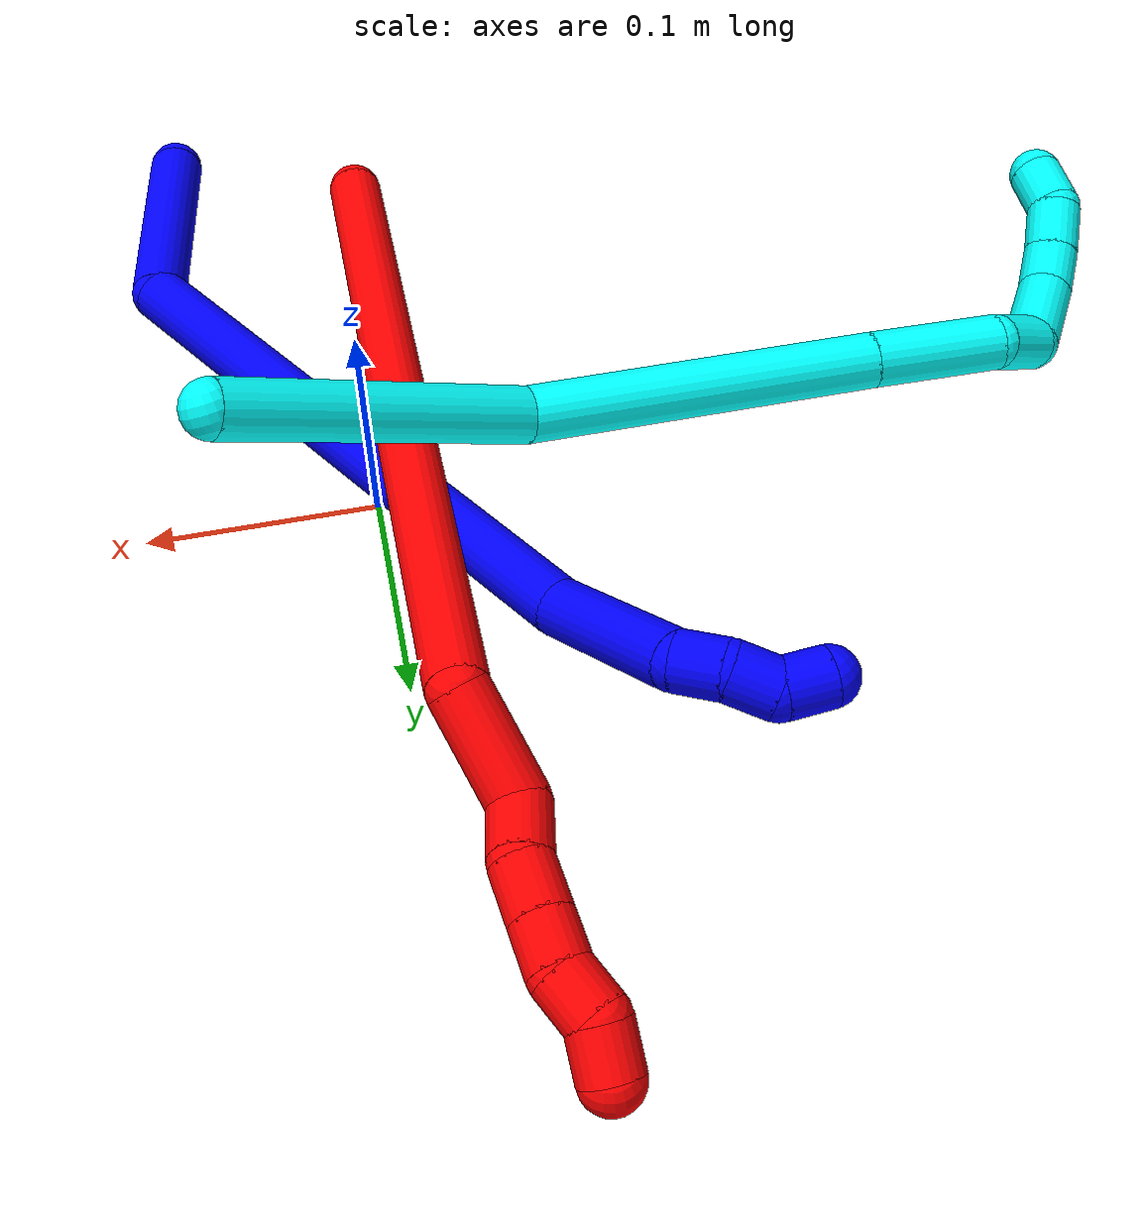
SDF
<sdf version="1.7">
 <world name="default">
  <plugin name="TubeGeneratorPlugin" filename="libtube_generator_plugin.so"/>
  <model name="photoneo_s_sensor">
   <static>1</static>
   <pose>0 0 2 1.57079 1.57079 3.14159</pose>
   <link name="link">
    <inertial><mass>0.1</mass></inertial>
    <sensor name="sensor" type="depth">
     <update_rate>30</update_rate>
     <camera>
      <horizontal_fov>1.22</horizontal_fov>
      <image><width>1920</width><height>1200</height><format>B8G8R8</format></image>
      <clip><near>0.1</near><far>4</far></clip>
      <depth_camera><output>points</output></depth_camera>
     </camera>
     <plugin name="camera_plugin" filename="libgazebo_ros_depth_camera.so">
      <baseline>0.2</baseline>
      <alwaysOn>1</alwaysOn>
      <updateRate>0.0</updateRate>
      <cameraName>camera_ir</cameraName>
      <imageTopicName>/camera/color/image_raw</imageTopicName>
      <cameraInfoTopicName>/camera/color/camera_info</cameraInfoTopicName>
      <depthImageTopicName>/camera/depth/image_raw</depthImageTopicName>
      <depthImageCameraInfoTopicName>/camera/depth/camera_info</depthImageCameraInfoTopicName>
      <pointCloudTopicName>/camera/depth/points</pointCloudTopicName>
      <frameName>fr_optical</frameName>
      <pointCloudCutoff>0.1</pointCloudCutoff>
      <pointCloudCutoffMax>2.0</pointCloudCutoffMax>
      <distortionK1>0</distortionK1>
      <distortionK2>0</distortionK2>
      <distortionK3>0</distortionK3>
      <distortionT1>0</distortionT1>
      <distortionT2>0</distortionT2>
      <CxPrime>0</CxPrime>
      <Cx>0</Cx>
      <Cy>0</Cy>
      <focalLength>0</focalLength>
      <hackBaseline>0</hackBaseline>
     </plugin>
    </sensor>
   </link>
  </model>
  <gravity>0 0 -9.8</gravity>
  <magnetic_field>6e-06 2.3e-05 -4.2e-05</magnetic_field>
  <atmosphere type="adiabatic"/>
  <physics name="default_physics" default="0" type="ode">
   <max_step_size>0.003</max_step_size>
   <real_time_factor>1</real_time_factor>
   <real_time_update_rate>1000</real_time_update_rate>
   <max_contacts>10000</max_contacts>
   <ode>
    <solver>
     <type>quick</type>
     <iters>100</iters>
     <sor>1.3</sor>
     <use_dynamic_moi_rescaling>0</use_dynamic_moi_rescaling>
    </solver>
    <constraints>
     <contact_max_correcting_vel>0</contact_max_correcting_vel>
     <contact_surface_layer>0.001</contact_surface_layer>
     <cfm>0</cfm>
     <erp>0.2</erp>
    </constraints>
   </ode>
  </physics>
  <scene><ambient>0.4 0.4 0.4 1</ambient><background>0.7 0.7 0.7 1</background><shadows>0</shadows></scene>
  <audio><device>default</device></audio>
  <spherical_coordinates>
   <surface_model>EARTH_WGS84</surface_model>
   <latitude_deg>0</latitude_deg>
   <longitude_deg>0</longitude_deg>
   <elevation>0</elevation>
   <heading_deg>0</heading_deg>
  </spherical_coordinates>
  <model name="bin">
   <static>1</static>
   <link name="bottom">
    <collision name="collision-bottom">
     <pose>0 0 -0.01 0 -0 0</pose>
     <geometry><box><size>0.8 0.6 0.02</size></box></geometry>
     <surface>
      <friction><ode><mu>100</mu><mu2>100</mu2></ode></friction>
      <contact><collide_bitmask>65535</collide_bitmask></contact>
     </surface>
    </collision>
   </link>
   <link name="west_wall">
    <collision name="collision-west_wall">
     <pose>-0.41 0 0.1 0 -0 0</pose>
     <geometry><box><size>0.02 0.6 0.2</size></box></geometry>
     <surface>
      <friction><ode><mu>100</mu><mu2>100</mu2></ode></friction>
      <contact><collide_bitmask>65535</collide_bitmask></contact>
     </surface>
    </collision>
   </link>
   <link name="east_wall">
    <collision name="collision-east_wall">
     <pose>0.41 0 0.1 0 -0 0</pose>
     <geometry><box><size>0.02 0.6 0.2</size></box></geometry>
     <surface>
      <friction><ode><mu>100</mu><mu2>100</mu2></ode></friction>
      <contact><collide_bitmask>65535</collide_bitmask></contact>
     </surface>
    </collision>
   </link>
   <link name="south_wall">
    <collision name="collision-south_wall">
     <pose>0 -0.31 0.1 0 -0 0</pose>
     <geometry><box><size>0.8 0.02 0.2</size></box></geometry>
     <surface>
      <friction><ode><mu>100</mu><mu2>100</mu2></ode></friction>
      <contact><collide_bitmask>65535</collide_bitmask></contact>
     </surface>
    </collision>
   </link>
   <link name="north_wall">
    <collision name="collision-north_wall">
     <pose>0 0.31 0.1 0 -0 0</pose>
     <geometry><box><size>0.8 0.02 0.2</size></box></geometry>
     <surface>
      <friction><ode><mu>100</mu><mu2>100</mu2></ode></friction>
      <contact><collide_bitmask>65535</collide_bitmask></contact>
     </surface>
    </collision>
   </link>
  </model>
  <model name="1">
   <static>0</static>
   <link name="1">
    <collision name="collision-cylinder-e_1_1_4">
     <pose>-0.019062 0.03642 -0.029418 -2.25024 -0.386655 0.777845</pose>
     <geometry><cylinder><radius>0.0125</radius><length>0.101098</length></cylinder></geometry>
     <surface>
      <friction><ode><mu>1.16</mu><mu2>1.16</mu2><slip1>0</slip1><slip2>0</slip2></ode></friction>
      <contact><ode><kp>1e+06</kp><kd>1</kd><max_vel>0</max_vel><min_depth>0.001</min_depth></ode></contact>
     </surface>
    </collision>
    <visual name="visual-cylinder-e_1_1_4">
     <pose>-0.019062 0.03642 -0.029418 -2.25024 -0.386655 0.777845</pose>
     <geometry><cylinder><radius>0.0125</radius><length>0.101098</length></cylinder></geometry>
     <material><ambient>0 0 1 1</ambient></material>
    </visual>
    <collision name="collision-cylinder-e_2_4_5">
     <pose>-0.115966 0.180228 -0.046623 -1.45755 -0.624175 0.560856</pose>
     <geometry><cylinder><radius>0.0125</radius><length>0.266389</length></cylinder></geometry>
     <surface>
      <friction><ode><mu>1.16</mu><mu2>1.16</mu2><slip1>0</slip1><slip2>0</slip2></ode></friction>
      <contact><ode><kp>1e+06</kp><kd>1</kd><max_vel>0</max_vel><min_depth>0.001</min_depth></ode></contact>
     </surface>
    </collision>
    <visual name="visual-cylinder-e_2_4_5">
     <pose>-0.115966 0.180228 -0.046623 -1.45755 -0.624175 0.560856</pose>
     <geometry><cylinder><radius>0.0125</radius><length>0.266389</length></cylinder></geometry>
     <material><ambient>0 0 1 1</ambient></material>
    </visual>
    <collision name="collision-cylinder-e_3_5_6">
     <pose>-0.200961 0.322229 -0.031388 -1.48371 -0.203019 0.186169</pose>
     <geometry><cylinder><radius>0.0125</radius><length>0.070945</length></cylinder></geometry>
     <surface>
      <friction><ode><mu>1.16</mu><mu2>1.16</mu2><slip1>0</slip1><slip2>0</slip2></ode></friction>
      <contact><ode><kp>1e+06</kp><kd>1</kd><max_vel>0</max_vel><min_depth>0.001</min_depth></ode></contact>
     </surface>
    </collision>
    <visual name="visual-cylinder-e_3_5_6">
     <pose>-0.200961 0.322229 -0.031388 -1.48371 -0.203019 0.186169</pose>
     <geometry><cylinder><radius>0.0125</radius><length>0.070945</length></cylinder></geometry>
     <material><ambient>0 0 1 1</ambient></material>
    </visual>
    <collision name="collision-cylinder-e_4_6_7">
     <pose>-0.212462 0.364735 -0.02291 -0.966039 -0.425496 0.225621</pose>
     <geometry><cylinder><radius>0.0125</radius><length>0.02107</length></cylinder></geometry>
     <surface>
      <friction><ode><mu>1.16</mu><mu2>1.16</mu2><slip1>0</slip1><slip2>0</slip2></ode></friction>
      <contact><ode><kp>1e+06</kp><kd>1</kd><max_vel>0</max_vel><min_depth>0.001</min_depth></ode></contact>
     </surface>
    </collision>
    <visual name="visual-cylinder-e_4_6_7">
     <pose>-0.212462 0.364735 -0.02291 -0.966039 -0.425496 0.225621</pose>
     <geometry><cylinder><radius>0.0125</radius><length>0.02107</length></cylinder></geometry>
     <material><ambient>0 0 1 1</ambient></material>
    </visual>
    <collision name="collision-cylinder-e_5_7_8">
     <pose>-0.223826 0.377878 -0.01248 -0.812339 -0.770179 0.345181</pose>
     <geometry><cylinder><radius>0.0125</radius><length>0.020153</length></cylinder></geometry>
     <surface>
      <friction><ode><mu>1.16</mu><mu2>1.16</mu2><slip1>0</slip1><slip2>0</slip2></ode></friction>
      <contact><ode><kp>1e+06</kp><kd>1</kd><max_vel>0</max_vel><min_depth>0.001</min_depth></ode></contact>
     </surface>
    </collision>
    <visual name="visual-cylinder-e_5_7_8">
     <pose>-0.223826 0.377878 -0.01248 -0.812339 -0.770179 0.345181</pose>
     <geometry><cylinder><radius>0.0125</radius><length>0.020153</length></cylinder></geometry>
     <material><ambient>0 0 1 1</ambient></material>
    </visual>
    <collision name="collision-cylinder-e_6_8_2">
     <pose>-0.233969 0.385767 0.001808 -0.276034 -0.312503 0.043756</pose>
     <geometry><cylinder><radius>0.0125</radius><length>0.020345</length></cylinder></geometry>
     <surface>
      <friction><ode><mu>1.16</mu><mu2>1.16</mu2><slip1>0</slip1><slip2>0</slip2></ode></friction>
      <contact><ode><kp>1e+06</kp><kd>1</kd><max_vel>0</max_vel><min_depth>0.001</min_depth></ode></contact>
     </surface>
    </collision>
    <visual name="visual-cylinder-e_6_8_2">
     <pose>-0.233969 0.385767 0.001808 -0.276034 -0.312503 0.043756</pose>
     <geometry><cylinder><radius>0.0125</radius><length>0.020345</length></cylinder></geometry>
     <material><ambient>0 0 1 1</ambient></material>
    </visual>
    <collision name="collision-sphere-2">
     <pose>-0.237097 0.388405 0.011121 0 -0 0</pose>
     <geometry><sphere><radius>0.0125</radius></sphere></geometry>
     <surface>
      <friction><ode><mu>1.16</mu><mu2>1.16</mu2><slip1>0</slip1><slip2>0</slip2></ode></friction>
      <contact><ode><kp>1e+06</kp><kd>1</kd><max_vel>0</max_vel><min_depth>0.001</min_depth></ode></contact>
     </surface>
    </collision>
    <visual name="visual-sphere-2">
     <pose>-0.237097 0.388405 0.011121 0 -0 0</pose>
     <geometry><sphere><radius>0.0125</radius></sphere></geometry>
     <material><ambient>0 0 1 1</ambient></material>
    </visual>
    <collision name="collision-sphere-4">
     <pose>-0.038123 0.07284 -0.058836 0 -0 0</pose>
     <geometry><sphere><radius>0.0125</radius></sphere></geometry>
     <surface>
      <friction><ode><mu>1.16</mu><mu2>1.16</mu2><slip1>0</slip1><slip2>0</slip2></ode></friction>
      <contact><ode><kp>1e+06</kp><kd>1</kd><max_vel>0</max_vel><min_depth>0.001</min_depth></ode></contact>
     </surface>
    </collision>
    <visual name="visual-sphere-4">
     <pose>-0.038123 0.07284 -0.058836 0 -0 0</pose>
     <geometry><sphere><radius>0.0125</radius></sphere></geometry>
     <material><ambient>0 0 1 1</ambient></material>
    </visual>
    <collision name="collision-sphere-1">
     <geometry><sphere><radius>0.0125</radius></sphere></geometry>
     <surface>
      <friction><ode><mu>1.16</mu><mu2>1.16</mu2><slip1>0</slip1><slip2>0</slip2></ode></friction>
      <contact><ode><kp>1e+06</kp><kd>1</kd><max_vel>0</max_vel><min_depth>0.001</min_depth></ode></contact>
     </surface>
    </collision>
    <visual name="visual-sphere-1">
     <geometry><sphere><radius>0.0125</radius></sphere></geometry>
     <material><ambient>0 0 1 1</ambient></material>
    </visual>
    <collision name="collision-sphere-8">
     <pose>-0.230842 0.383129 -0.007505 0 -0 0</pose>
     <geometry><sphere><radius>0.0125</radius></sphere></geometry>
     <surface>
      <friction><ode><mu>1.16</mu><mu2>1.16</mu2><slip1>0</slip1><slip2>0</slip2></ode></friction>
      <contact><ode><kp>1e+06</kp><kd>1</kd><max_vel>0</max_vel><min_depth>0.001</min_depth></ode></contact>
     </surface>
    </collision>
    <visual name="visual-sphere-8">
     <pose>-0.230842 0.383129 -0.007505 0 -0 0</pose>
     <geometry><sphere><radius>0.0125</radius></sphere></geometry>
     <material><ambient>0 0 1 1</ambient></material>
    </visual>
    <collision name="collision-sphere-5">
     <pose>-0.193809 0.287616 -0.03441 0 -0 0</pose>
     <geometry><sphere><radius>0.0125</radius></sphere></geometry>
     <surface>
      <friction><ode><mu>1.16</mu><mu2>1.16</mu2><slip1>0</slip1><slip2>0</slip2></ode></friction>
      <contact><ode><kp>1e+06</kp><kd>1</kd><max_vel>0</max_vel><min_depth>0.001</min_depth></ode></contact>
     </surface>
    </collision>
    <visual name="visual-sphere-5">
     <pose>-0.193809 0.287616 -0.03441 0 -0 0</pose>
     <geometry><sphere><radius>0.0125</radius></sphere></geometry>
     <material><ambient>0 0 1 1</ambient></material>
    </visual>
    <collision name="collision-sphere-6">
     <pose>-0.208113 0.356841 -0.028366 0 -0 0</pose>
     <geometry><sphere><radius>0.0125</radius></sphere></geometry>
     <surface>
      <friction><ode><mu>1.16</mu><mu2>1.16</mu2><slip1>0</slip1><slip2>0</slip2></ode></friction>
      <contact><ode><kp>1e+06</kp><kd>1</kd><max_vel>0</max_vel><min_depth>0.001</min_depth></ode></contact>
     </surface>
    </collision>
    <visual name="visual-sphere-6">
     <pose>-0.208113 0.356841 -0.028366 0 -0 0</pose>
     <geometry><sphere><radius>0.0125</radius></sphere></geometry>
     <material><ambient>0 0 1 1</ambient></material>
    </visual>
    <collision name="collision-sphere-7">
     <pose>-0.21681 0.372628 -0.017455 0 -0 0</pose>
     <geometry><sphere><radius>0.0125</radius></sphere></geometry>
     <surface>
      <friction><ode><mu>1.16</mu><mu2>1.16</mu2><slip1>0</slip1><slip2>0</slip2></ode></friction>
      <contact><ode><kp>1e+06</kp><kd>1</kd><max_vel>0</max_vel><min_depth>0.001</min_depth></ode></contact>
     </surface>
    </collision>
    <visual name="visual-sphere-7">
     <pose>-0.21681 0.372628 -0.017455 0 -0 0</pose>
     <geometry><sphere><radius>0.0125</radius></sphere></geometry>
     <material><ambient>0 0 1 1</ambient></material>
    </visual>
    <inertial>
     <pose>-0.121648 0.195404 -0.036636 0 -0 0</pose>
     <mass>0.5</mass>
     <inertia>
      <ixx>0.001915</ixx>
      <ixy>0</ixy>
      <ixz>0</ixz>
      <iyy>0.001407</iyy>
      <iyz>0</iyz>
      <izz>-0.000407</izz>
     </inertia>
    </inertial>
   </link>
   <pose>0.071972 -0.241573 0.011499 1.39384 -0.960407 -0.923117</pose>
  </model>
  <model name="2">
   <static>0</static>
   <link name="2">
    <collision name="collision-cylinder-e_1_1_4">
     <pose>-0.035934 0.168585 0.013501 -1.49088 -0.209356 0.193365</pose>
     <geometry><cylinder><radius>0.0125</radius><length>0.345801</length></cylinder></geometry>
     <surface>
      <friction><ode><mu>1.16</mu><mu2>1.16</mu2><slip1>0</slip1><slip2>0</slip2></ode></friction>
      <contact><ode><kp>1e+06</kp><kd>1</kd><max_vel>0</max_vel><min_depth>0.001</min_depth></ode></contact>
     </surface>
    </collision>
    <visual name="visual-cylinder-e_1_1_4">
     <pose>-0.035934 0.168585 0.013501 -1.49088 -0.209356 0.193365</pose>
     <geometry><cylinder><radius>0.0125</radius><length>0.345801</length></cylinder></geometry>
     <material><ambient>1 0 0 1</ambient></material>
    </visual>
    <collision name="collision-cylinder-e_2_4_5">
     <pose>-0.068038 0.354688 0.041996 -0.862858 0.164598 -0.075908</pose>
     <geometry><cylinder><radius>0.0125</radius><length>0.04675</length></cylinder></geometry>
     <surface>
      <friction><ode><mu>1.16</mu><mu2>1.16</mu2><slip1>0</slip1><slip2>0</slip2></ode></friction>
      <contact><ode><kp>1e+06</kp><kd>1</kd><max_vel>0</max_vel><min_depth>0.001</min_depth></ode></contact>
     </surface>
    </collision>
    <visual name="visual-cylinder-e_2_4_5">
     <pose>-0.068038 0.354688 0.041996 -0.862858 0.164598 -0.075908</pose>
     <geometry><cylinder><radius>0.0125</radius><length>0.04675</length></cylinder></geometry>
     <material><ambient>1 0 0 1</ambient></material>
    </visual>
    <collision name="collision-cylinder-e_3_5_6">
     <pose>-0.068767 0.383845 0.058441 -1.44684 -0.370781 0.328274</pose>
     <geometry><cylinder><radius>0.0125</radius><length>0.025167</length></cylinder></geometry>
     <surface>
      <friction><ode><mu>1.16</mu><mu2>1.16</mu2><slip1>0</slip1><slip2>0</slip2></ode></friction>
      <contact><ode><kp>1e+06</kp><kd>1</kd><max_vel>0</max_vel><min_depth>0.001</min_depth></ode></contact>
     </surface>
    </collision>
    <visual name="visual-cylinder-e_3_5_6">
     <pose>-0.068767 0.383845 0.058441 -1.44684 -0.370781 0.328274</pose>
     <geometry><cylinder><radius>0.0125</radius><length>0.025167</length></cylinder></geometry>
     <material><ambient>1 0 0 1</ambient></material>
    </visual>
    <collision name="collision-cylinder-e_4_6_7">
     <pose>-0.074018 0.405875 0.063517 -1.23511 -0.062709 0.044545</pose>
     <geometry><cylinder><radius>0.0125</radius><length>0.022056</length></cylinder></geometry>
     <surface>
      <friction><ode><mu>1.16</mu><mu2>1.16</mu2><slip1>0</slip1><slip2>0</slip2></ode></friction>
      <contact><ode><kp>1e+06</kp><kd>1</kd><max_vel>0</max_vel><min_depth>0.001</min_depth></ode></contact>
     </surface>
    </collision>
    <visual name="visual-cylinder-e_4_6_7">
     <pose>-0.074018 0.405875 0.063517 -1.23511 -0.062709 0.044545</pose>
     <geometry><cylinder><radius>0.0125</radius><length>0.022056</length></cylinder></geometry>
     <material><ambient>1 0 0 1</ambient></material>
    </visual>
    <collision name="collision-cylinder-e_5_7_8">
     <pose>-0.075334 0.425719 0.070389 -1.23992 -0.062467 0.044599</pose>
     <geometry><cylinder><radius>0.0125</radius><length>0.020027</length></cylinder></geometry>
     <surface>
      <friction><ode><mu>1.16</mu><mu2>1.16</mu2><slip1>0</slip1><slip2>0</slip2></ode></friction>
      <contact><ode><kp>1e+06</kp><kd>1</kd><max_vel>0</max_vel><min_depth>0.001</min_depth></ode></contact>
     </surface>
    </collision>
    <visual name="visual-cylinder-e_5_7_8">
     <pose>-0.075334 0.425719 0.070389 -1.23992 -0.062467 0.044599</pose>
     <geometry><cylinder><radius>0.0125</radius><length>0.020027</length></cylinder></geometry>
     <material><ambient>1 0 0 1</ambient></material>
    </visual>
    <collision name="collision-cylinder-e_6_8_9">
     <pose>-0.073219 0.444256 0.07697 -1.21904 0.27593 -0.193282</pose>
     <geometry><cylinder><radius>0.0125</radius><length>0.020115</length></cylinder></geometry>
     <surface>
      <friction><ode><mu>1.16</mu><mu2>1.16</mu2><slip1>0</slip1><slip2>0</slip2></ode></friction>
      <contact><ode><kp>1e+06</kp><kd>1</kd><max_vel>0</max_vel><min_depth>0.001</min_depth></ode></contact>
     </surface>
    </collision>
    <visual name="visual-cylinder-e_6_8_9">
     <pose>-0.073219 0.444256 0.07697 -1.21904 0.27593 -0.193282</pose>
     <geometry><cylinder><radius>0.0125</radius><length>0.020115</length></cylinder></geometry>
     <material><ambient>1 0 0 1</ambient></material>
    </visual>
    <collision name="collision-cylinder-e_7_9_2">
     <pose>-0.071552 0.460427 0.087338 -0.789151 -0.107057 0.044615</pose>
     <geometry><cylinder><radius>0.0125</radius><length>0.020084</length></cylinder></geometry>
     <surface>
      <friction><ode><mu>1.16</mu><mu2>1.16</mu2><slip1>0</slip1><slip2>0</slip2></ode></friction>
      <contact><ode><kp>1e+06</kp><kd>1</kd><max_vel>0</max_vel><min_depth>0.001</min_depth></ode></contact>
     </surface>
    </collision>
    <visual name="visual-cylinder-e_7_9_2">
     <pose>-0.071552 0.460427 0.087338 -0.789151 -0.107057 0.044615</pose>
     <geometry><cylinder><radius>0.0125</radius><length>0.020084</length></cylinder></geometry>
     <material><ambient>1 0 0 1</ambient></material>
    </visual>
    <collision name="collision-sphere-2">
     <pose>-0.072625 0.467514 0.094372 0 -0 0</pose>
     <geometry><sphere><radius>0.0125</radius></sphere></geometry>
     <surface>
      <friction><ode><mu>1.16</mu><mu2>1.16</mu2><slip1>0</slip1><slip2>0</slip2></ode></friction>
      <contact><ode><kp>1e+06</kp><kd>1</kd><max_vel>0</max_vel><min_depth>0.001</min_depth></ode></contact>
     </surface>
    </collision>
    <visual name="visual-sphere-2">
     <pose>-0.072625 0.467514 0.094372 0 -0 0</pose>
     <geometry><sphere><radius>0.0125</radius></sphere></geometry>
     <material><ambient>1 0 0 1</ambient></material>
    </visual>
    <collision name="collision-sphere-9">
     <pose>-0.070479 0.453341 0.080305 0 -0 0</pose>
     <geometry><sphere><radius>0.0125</radius></sphere></geometry>
     <surface>
      <friction><ode><mu>1.16</mu><mu2>1.16</mu2><slip1>0</slip1><slip2>0</slip2></ode></friction>
      <contact><ode><kp>1e+06</kp><kd>1</kd><max_vel>0</max_vel><min_depth>0.001</min_depth></ode></contact>
     </surface>
    </collision>
    <visual name="visual-sphere-9">
     <pose>-0.070479 0.453341 0.080305 0 -0 0</pose>
     <geometry><sphere><radius>0.0125</radius></sphere></geometry>
     <material><ambient>1 0 0 1</ambient></material>
    </visual>
    <collision name="collision-sphere-4">
     <pose>-0.071868 0.337171 0.027002 0 -0 0</pose>
     <geometry><sphere><radius>0.0125</radius></sphere></geometry>
     <surface>
      <friction><ode><mu>1.16</mu><mu2>1.16</mu2><slip1>0</slip1><slip2>0</slip2></ode></friction>
      <contact><ode><kp>1e+06</kp><kd>1</kd><max_vel>0</max_vel><min_depth>0.001</min_depth></ode></contact>
     </surface>
    </collision>
    <visual name="visual-sphere-4">
     <pose>-0.071868 0.337171 0.027002 0 -0 0</pose>
     <geometry><sphere><radius>0.0125</radius></sphere></geometry>
     <material><ambient>1 0 0 1</ambient></material>
    </visual>
    <collision name="collision-sphere-1">
     <geometry><sphere><radius>0.0125</radius></sphere></geometry>
     <surface>
      <friction><ode><mu>1.16</mu><mu2>1.16</mu2><slip1>0</slip1><slip2>0</slip2></ode></friction>
      <contact><ode><kp>1e+06</kp><kd>1</kd><max_vel>0</max_vel><min_depth>0.001</min_depth></ode></contact>
     </surface>
    </collision>
    <visual name="visual-sphere-1">
     <geometry><sphere><radius>0.0125</radius></sphere></geometry>
     <material><ambient>1 0 0 1</ambient></material>
    </visual>
    <collision name="collision-sphere-8">
     <pose>-0.075959 0.435171 0.073636 0 -0 0</pose>
     <geometry><sphere><radius>0.0125</radius></sphere></geometry>
     <surface>
      <friction><ode><mu>1.16</mu><mu2>1.16</mu2><slip1>0</slip1><slip2>0</slip2></ode></friction>
      <contact><ode><kp>1e+06</kp><kd>1</kd><max_vel>0</max_vel><min_depth>0.001</min_depth></ode></contact>
     </surface>
    </collision>
    <visual name="visual-sphere-8">
     <pose>-0.075959 0.435171 0.073636 0 -0 0</pose>
     <geometry><sphere><radius>0.0125</radius></sphere></geometry>
     <material><ambient>1 0 0 1</ambient></material>
    </visual>
    <collision name="collision-sphere-5">
     <pose>-0.064208 0.372206 0.056991 0 -0 0</pose>
     <geometry><sphere><radius>0.0125</radius></sphere></geometry>
     <surface>
      <friction><ode><mu>1.16</mu><mu2>1.16</mu2><slip1>0</slip1><slip2>0</slip2></ode></friction>
      <contact><ode><kp>1e+06</kp><kd>1</kd><max_vel>0</max_vel><min_depth>0.001</min_depth></ode></contact>
     </surface>
    </collision>
    <visual name="visual-sphere-5">
     <pose>-0.064208 0.372206 0.056991 0 -0 0</pose>
     <geometry><sphere><radius>0.0125</radius></sphere></geometry>
     <material><ambient>1 0 0 1</ambient></material>
    </visual>
    <collision name="collision-sphere-6">
     <pose>-0.073327 0.395483 0.059891 0 -0 0</pose>
     <geometry><sphere><radius>0.0125</radius></sphere></geometry>
     <surface>
      <friction><ode><mu>1.16</mu><mu2>1.16</mu2><slip1>0</slip1><slip2>0</slip2></ode></friction>
      <contact><ode><kp>1e+06</kp><kd>1</kd><max_vel>0</max_vel><min_depth>0.001</min_depth></ode></contact>
     </surface>
    </collision>
    <visual name="visual-sphere-6">
     <pose>-0.073327 0.395483 0.059891 0 -0 0</pose>
     <geometry><sphere><radius>0.0125</radius></sphere></geometry>
     <material><ambient>1 0 0 1</ambient></material>
    </visual>
    <collision name="collision-sphere-7">
     <pose>-0.074709 0.416267 0.067142 0 -0 0</pose>
     <geometry><sphere><radius>0.0125</radius></sphere></geometry>
     <surface>
      <friction><ode><mu>1.16</mu><mu2>1.16</mu2><slip1>0</slip1><slip2>0</slip2></ode></friction>
      <contact><ode><kp>1e+06</kp><kd>1</kd><max_vel>0</max_vel><min_depth>0.001</min_depth></ode></contact>
     </surface>
    </collision>
    <visual name="visual-sphere-7">
     <pose>-0.074709 0.416267 0.067142 0 -0 0</pose>
     <geometry><sphere><radius>0.0125</radius></sphere></geometry>
     <material><ambient>1 0 0 1</ambient></material>
    </visual>
    <inertial>
     <pose>-0.046777 0.240401 0.028432 0 -0 0</pose>
     <mass>0.5</mass>
     <inertia>
      <ixx>0.003983</ixx>
      <ixy>0</ixy>
      <ixz>0</ixz>
      <iyy>0.001105</iyy>
      <iyz>0</iyz>
      <izz>-0.002663</izz>
     </inertia>
    </inertial>
   </link>
   <pose>-0.015681 -0.203389 0.012457 2.94676 0.02875 -2.93392</pose>
  </model>
  <model name="3">
   <static>0</static>
   <link name="3">
    <collision name="collision-cylinder-e_1_1_4">
     <pose>-0.057565 -0.033232 -0.027228 2.25722 -0.929649 -1.62826</pose>
     <geometry><cylinder><radius>0.0125</radius><length>0.143658</length></cylinder></geometry>
     <surface>
      <friction><ode><mu>1.16</mu><mu2>1.16</mu2><slip1>0</slip1><slip2>0</slip2></ode></friction>
      <contact><ode><kp>1e+06</kp><kd>1</kd><max_vel>0</max_vel><min_depth>0.001</min_depth></ode></contact>
     </surface>
    </collision>
    <visual name="visual-cylinder-e_1_1_4">
     <pose>-0.057565 -0.033232 -0.027228 2.25722 -0.929649 -1.62826</pose>
     <geometry><cylinder><radius>0.0125</radius><length>0.143658</length></cylinder></geometry>
     <material><ambient>0.003922 1 0.996078 1</ambient></material>
    </visual>
    <collision name="collision-cylinder-e_2_4_5">
     <pose>-0.192016 -0.074172 -0.068502 2.63964 -1.36536 -2.5307</pose>
     <geometry><cylinder><radius>0.0125</radius><length>0.157076</length></cylinder></geometry>
     <surface>
      <friction><ode><mu>1.16</mu><mu2>1.16</mu2><slip1>0</slip1><slip2>0</slip2></ode></friction>
      <contact><ode><kp>1e+06</kp><kd>1</kd><max_vel>0</max_vel><min_depth>0.001</min_depth></ode></contact>
     </surface>
    </collision>
    <visual name="visual-cylinder-e_2_4_5">
     <pose>-0.192016 -0.074172 -0.068502 2.63964 -1.36536 -2.5307</pose>
     <geometry><cylinder><radius>0.0125</radius><length>0.157076</length></cylinder></geometry>
     <material><ambient>0.003922 1 0.996078 1</ambient></material>
    </visual>
    <collision name="collision-cylinder-e_3_5_6">
     <pose>-0.29804 -0.084777 -0.088244 2.67123 -1.3549 -2.5626</pose>
     <geometry><cylinder><radius>0.0125</radius><length>0.059661</length></cylinder></geometry>
     <surface>
      <friction><ode><mu>1.16</mu><mu2>1.16</mu2><slip1>0</slip1><slip2>0</slip2></ode></friction>
      <contact><ode><kp>1e+06</kp><kd>1</kd><max_vel>0</max_vel><min_depth>0.001</min_depth></ode></contact>
     </surface>
    </collision>
    <visual name="visual-cylinder-e_3_5_6">
     <pose>-0.29804 -0.084777 -0.088244 2.67123 -1.3549 -2.5626</pose>
     <geometry><cylinder><radius>0.0125</radius><length>0.059661</length></cylinder></geometry>
     <material><ambient>0.003922 1 0.996078 1</ambient></material>
    </visual>
    <collision name="collision-cylinder-e_4_6_7">
     <pose>-0.337638 -0.095664 -0.098754 2.11299 -0.842506 -1.34095</pose>
     <geometry><cylinder><radius>0.0125</radius><length>0.028032</length></cylinder></geometry>
     <surface>
      <friction><ode><mu>1.16</mu><mu2>1.16</mu2><slip1>0</slip1><slip2>0</slip2></ode></friction>
      <contact><ode><kp>1e+06</kp><kd>1</kd><max_vel>0</max_vel><min_depth>0.001</min_depth></ode></contact>
     </surface>
    </collision>
    <visual name="visual-cylinder-e_4_6_7">
     <pose>-0.337638 -0.095664 -0.098754 2.11299 -0.842506 -1.34095</pose>
     <geometry><cylinder><radius>0.0125</radius><length>0.028032</length></cylinder></geometry>
     <material><ambient>0.003922 1 0.996078 1</ambient></material>
    </visual>
    <collision name="collision-cylinder-e_5_7_8">
     <pose>-0.359893 -0.120774 -0.097255 1.21749 -0.573868 -0.405709</pose>
     <geometry><cylinder><radius>0.0125</radius><length>0.043452</length></cylinder></geometry>
     <surface>
      <friction><ode><mu>1.16</mu><mu2>1.16</mu2><slip1>0</slip1><slip2>0</slip2></ode></friction>
      <contact><ode><kp>1e+06</kp><kd>1</kd><max_vel>0</max_vel><min_depth>0.001</min_depth></ode></contact>
     </surface>
    </collision>
    <visual name="visual-cylinder-e_5_7_8">
     <pose>-0.359893 -0.120774 -0.097255 1.21749 -0.573868 -0.405709</pose>
     <geometry><cylinder><radius>0.0125</radius><length>0.043452</length></cylinder></geometry>
     <material><ambient>0.003922 1 0.996078 1</ambient></material>
    </visual>
    <collision name="collision-cylinder-e_6_8_9">
     <pose>-0.377266 -0.143263 -0.083352 0.615833 -0.54044 -0.175733</pose>
     <geometry><cylinder><radius>0.0125</radius><length>0.021687</length></cylinder></geometry>
     <surface>
      <friction><ode><mu>1.16</mu><mu2>1.16</mu2><slip1>0</slip1><slip2>0</slip2></ode></friction>
      <contact><ode><kp>1e+06</kp><kd>1</kd><max_vel>0</max_vel><min_depth>0.001</min_depth></ode></contact>
     </surface>
    </collision>
    <visual name="visual-cylinder-e_6_8_9">
     <pose>-0.377266 -0.143263 -0.083352 0.615833 -0.54044 -0.175733</pose>
     <geometry><cylinder><radius>0.0125</radius><length>0.021687</length></cylinder></geometry>
     <material><ambient>0.003922 1 0.996078 1</ambient></material>
    </visual>
    <collision name="collision-cylinder-e_7_9_10">
     <pose>-0.387942 -0.154158 -0.066911 0.557931 -0.454394 -0.132248</pose>
     <geometry><cylinder><radius>0.0125</radius><length>0.023222</length></cylinder></geometry>
     <surface>
      <friction><ode><mu>1.16</mu><mu2>1.16</mu2><slip1>0</slip1><slip2>0</slip2></ode></friction>
      <contact><ode><kp>1e+06</kp><kd>1</kd><max_vel>0</max_vel><min_depth>0.001</min_depth></ode></contact>
     </surface>
    </collision>
    <visual name="visual-cylinder-e_7_9_10">
     <pose>-0.387942 -0.154158 -0.066911 0.557931 -0.454394 -0.132248</pose>
     <geometry><cylinder><radius>0.0125</radius><length>0.023222</length></cylinder></geometry>
     <material><ambient>0.003922 1 0.996078 1</ambient></material>
    </visual>
    <collision name="collision-cylinder-e_8_10_2">
     <pose>-0.393491 -0.168412 -0.050427 0.852386 -0.039054 -0.017733</pose>
     <geometry><cylinder><radius>0.0125</radius><length>0.023212</length></cylinder></geometry>
     <surface>
      <friction><ode><mu>1.16</mu><mu2>1.16</mu2><slip1>0</slip1><slip2>0</slip2></ode></friction>
      <contact><ode><kp>1e+06</kp><kd>1</kd><max_vel>0</max_vel><min_depth>0.001</min_depth></ode></contact>
     </surface>
    </collision>
    <visual name="visual-cylinder-e_8_10_2">
     <pose>-0.393491 -0.168412 -0.050427 0.852386 -0.039054 -0.017733</pose>
     <geometry><cylinder><radius>0.0125</radius><length>0.023212</length></cylinder></geometry>
     <material><ambient>0.003922 1 0.996078 1</ambient></material>
    </visual>
    <collision name="collision-sphere-2">
     <pose>-0.393945 -0.177143 -0.042794 0 -0 0</pose>
     <geometry><sphere><radius>0.0125</radius></sphere></geometry>
     <surface>
      <friction><ode><mu>1.16</mu><mu2>1.16</mu2><slip1>0</slip1><slip2>0</slip2></ode></friction>
      <contact><ode><kp>1e+06</kp><kd>1</kd><max_vel>0</max_vel><min_depth>0.001</min_depth></ode></contact>
     </surface>
    </collision>
    <visual name="visual-sphere-2">
     <pose>-0.393945 -0.177143 -0.042794 0 -0 0</pose>
     <geometry><sphere><radius>0.0125</radius></sphere></geometry>
     <material><ambient>0.003922 1 0.996078 1</ambient></material>
    </visual>
    <collision name="collision-sphere-10">
     <pose>-0.393038 -0.159681 -0.05806 0 -0 0</pose>
     <geometry><sphere><radius>0.0125</radius></sphere></geometry>
     <surface>
      <friction><ode><mu>1.16</mu><mu2>1.16</mu2><slip1>0</slip1><slip2>0</slip2></ode></friction>
      <contact><ode><kp>1e+06</kp><kd>1</kd><max_vel>0</max_vel><min_depth>0.001</min_depth></ode></contact>
     </surface>
    </collision>
    <visual name="visual-sphere-10">
     <pose>-0.393038 -0.159681 -0.05806 0 -0 0</pose>
     <geometry><sphere><radius>0.0125</radius></sphere></geometry>
     <material><ambient>0.003922 1 0.996078 1</ambient></material>
    </visual>
    <collision name="collision-sphere-9">
     <pose>-0.382845 -0.148634 -0.075762 0 -0 0</pose>
     <geometry><sphere><radius>0.0125</radius></sphere></geometry>
     <surface>
      <friction><ode><mu>1.16</mu><mu2>1.16</mu2><slip1>0</slip1><slip2>0</slip2></ode></friction>
      <contact><ode><kp>1e+06</kp><kd>1</kd><max_vel>0</max_vel><min_depth>0.001</min_depth></ode></contact>
     </surface>
    </collision>
    <visual name="visual-sphere-9">
     <pose>-0.382845 -0.148634 -0.075762 0 -0 0</pose>
     <geometry><sphere><radius>0.0125</radius></sphere></geometry>
     <material><ambient>0.003922 1 0.996078 1</ambient></material>
    </visual>
    <collision name="collision-sphere-4">
     <pose>-0.115129 -0.066464 -0.054457 0 -0 0</pose>
     <geometry><sphere><radius>0.0125</radius></sphere></geometry>
     <surface>
      <friction><ode><mu>1.16</mu><mu2>1.16</mu2><slip1>0</slip1><slip2>0</slip2></ode></friction>
      <contact><ode><kp>1e+06</kp><kd>1</kd><max_vel>0</max_vel><min_depth>0.001</min_depth></ode></contact>
     </surface>
    </collision>
    <visual name="visual-sphere-4">
     <pose>-0.115129 -0.066464 -0.054457 0 -0 0</pose>
     <geometry><sphere><radius>0.0125</radius></sphere></geometry>
     <material><ambient>0.003922 1 0.996078 1</ambient></material>
    </visual>
    <collision name="collision-sphere-1">
     <geometry><sphere><radius>0.0125</radius></sphere></geometry>
     <surface>
      <friction><ode><mu>1.16</mu><mu2>1.16</mu2><slip1>0</slip1><slip2>0</slip2></ode></friction>
      <contact><ode><kp>1e+06</kp><kd>1</kd><max_vel>0</max_vel><min_depth>0.001</min_depth></ode></contact>
     </surface>
    </collision>
    <visual name="visual-sphere-1">
     <geometry><sphere><radius>0.0125</radius></sphere></geometry>
     <material><ambient>0.003922 1 0.996078 1</ambient></material>
    </visual>
    <collision name="collision-sphere-8">
     <pose>-0.371687 -0.137892 -0.090942 0 -0 0</pose>
     <geometry><sphere><radius>0.0125</radius></sphere></geometry>
     <surface>
      <friction><ode><mu>1.16</mu><mu2>1.16</mu2><slip1>0</slip1><slip2>0</slip2></ode></friction>
      <contact><ode><kp>1e+06</kp><kd>1</kd><max_vel>0</max_vel><min_depth>0.001</min_depth></ode></contact>
     </surface>
    </collision>
    <visual name="visual-sphere-8">
     <pose>-0.371687 -0.137892 -0.090942 0 -0 0</pose>
     <geometry><sphere><radius>0.0125</radius></sphere></geometry>
     <material><ambient>0.003922 1 0.996078 1</ambient></material>
    </visual>
    <collision name="collision-sphere-5">
     <pose>-0.268902 -0.081881 -0.082547 0 -0 0</pose>
     <geometry><sphere><radius>0.0125</radius></sphere></geometry>
     <surface>
      <friction><ode><mu>1.16</mu><mu2>1.16</mu2><slip1>0</slip1><slip2>0</slip2></ode></friction>
      <contact><ode><kp>1e+06</kp><kd>1</kd><max_vel>0</max_vel><min_depth>0.001</min_depth></ode></contact>
     </surface>
    </collision>
    <visual name="visual-sphere-5">
     <pose>-0.268902 -0.081881 -0.082547 0 -0 0</pose>
     <geometry><sphere><radius>0.0125</radius></sphere></geometry>
     <material><ambient>0.003922 1 0.996078 1</ambient></material>
    </visual>
    <collision name="collision-sphere-6">
     <pose>-0.327178 -0.087673 -0.09394 0 -0 0</pose>
     <geometry><sphere><radius>0.0125</radius></sphere></geometry>
     <surface>
      <friction><ode><mu>1.16</mu><mu2>1.16</mu2><slip1>0</slip1><slip2>0</slip2></ode></friction>
      <contact><ode><kp>1e+06</kp><kd>1</kd><max_vel>0</max_vel><min_depth>0.001</min_depth></ode></contact>
     </surface>
    </collision>
    <visual name="visual-sphere-6">
     <pose>-0.327178 -0.087673 -0.09394 0 -0 0</pose>
     <geometry><sphere><radius>0.0125</radius></sphere></geometry>
     <material><ambient>0.003922 1 0.996078 1</ambient></material>
    </visual>
    <collision name="collision-sphere-7">
     <pose>-0.348098 -0.103655 -0.103568 0 -0 0</pose>
     <geometry><sphere><radius>0.0125</radius></sphere></geometry>
     <surface>
      <friction><ode><mu>1.16</mu><mu2>1.16</mu2><slip1>0</slip1><slip2>0</slip2></ode></friction>
      <contact><ode><kp>1e+06</kp><kd>1</kd><max_vel>0</max_vel><min_depth>0.001</min_depth></ode></contact>
     </surface>
    </collision>
    <visual name="visual-sphere-7">
     <pose>-0.348098 -0.103655 -0.103568 0 -0 0</pose>
     <geometry><sphere><radius>0.0125</radius></sphere></geometry>
     <material><ambient>0.003922 1 0.996078 1</ambient></material>
    </visual>
    <inertial>
     <pose>-0.215278 -0.080016 -0.062925 0 -0 0</pose>
     <mass>0.5</mass>
     <inertia>
      <ixx>-0.000283</ixx>
      <ixy>0</ixy>
      <ixz>0</ixz>
      <iyy>0.00031</iyy>
      <iyz>0</iyz>
      <izz>0.000712</izz>
     </inertia>
    </inertial>
   </link>
   <pose>0.057792 0.026613 0.100725 0.612701 0.1684 0.064986</pose>
  </model>
 </world>
</sdf>
